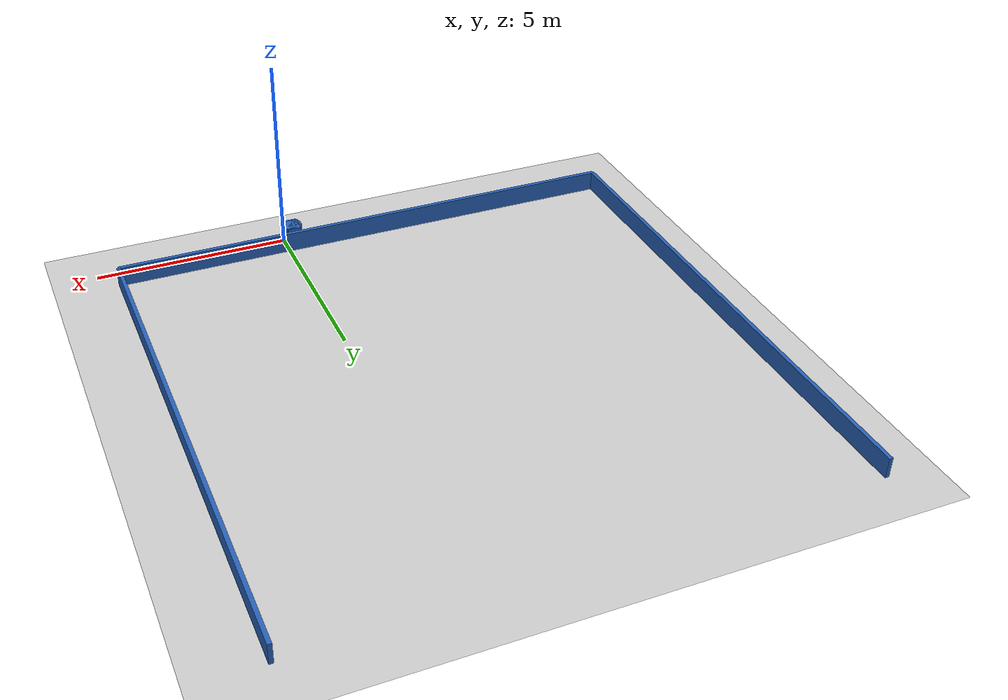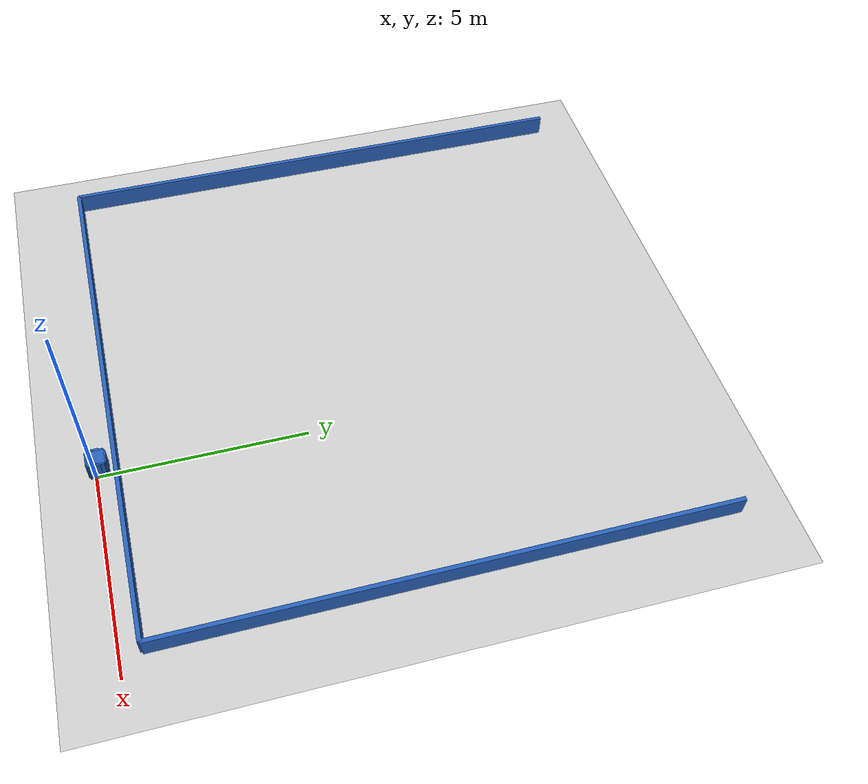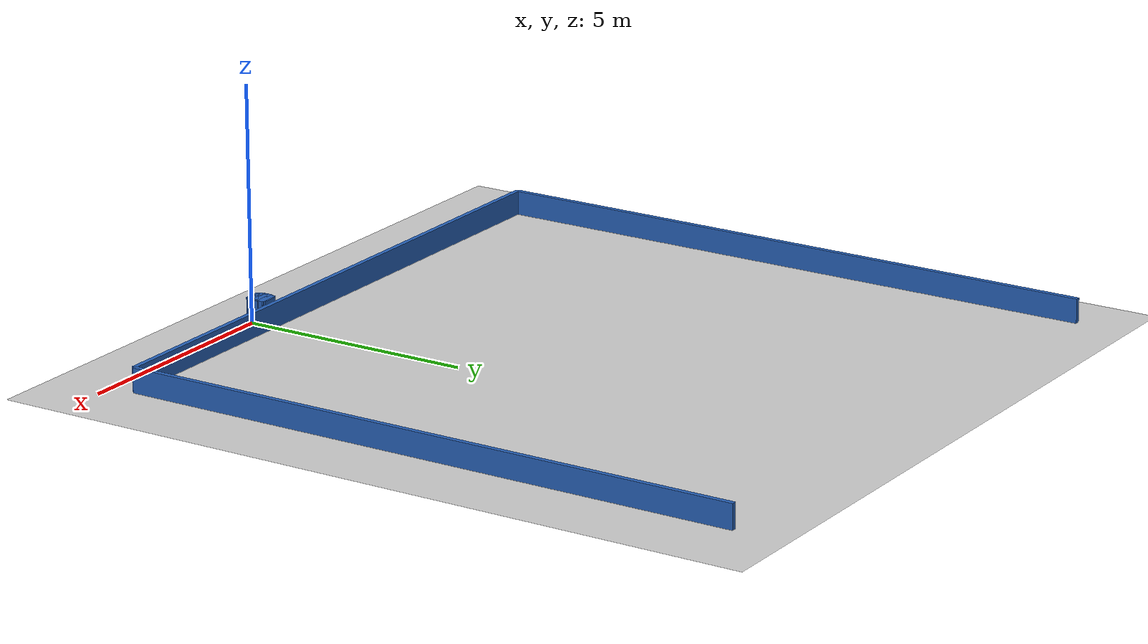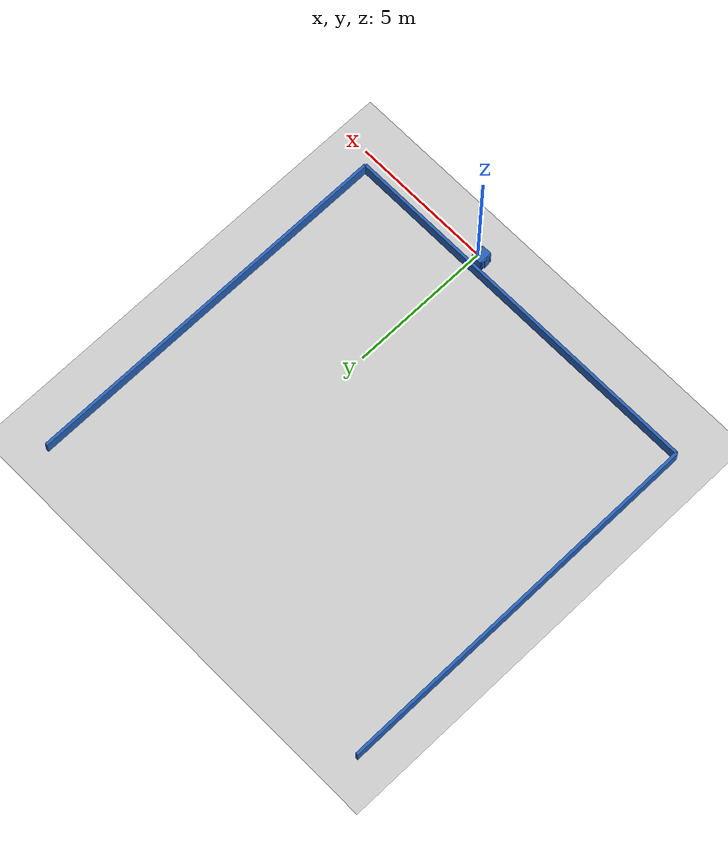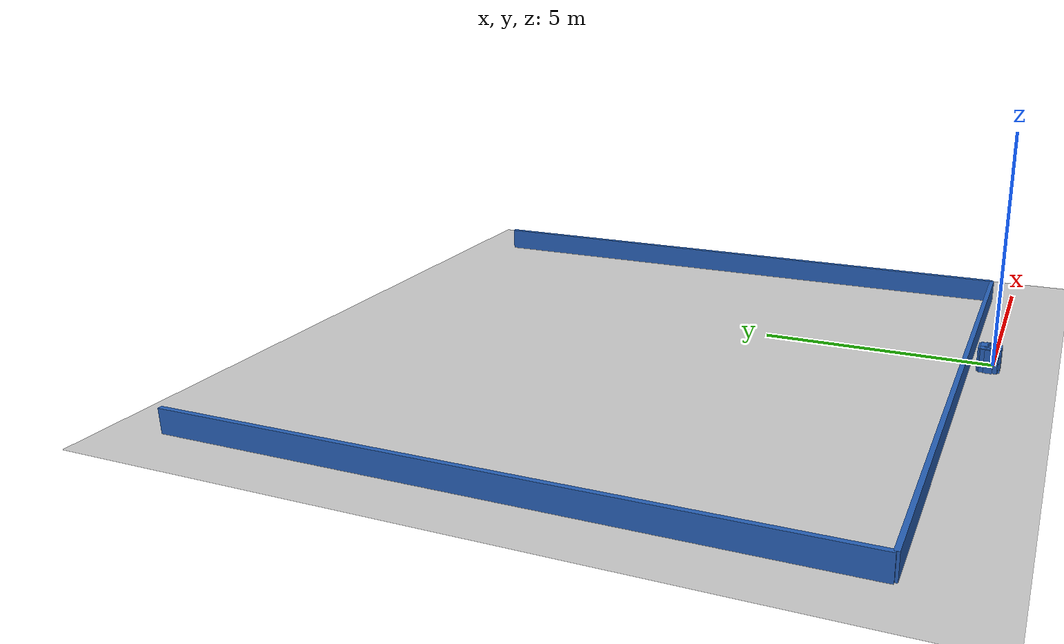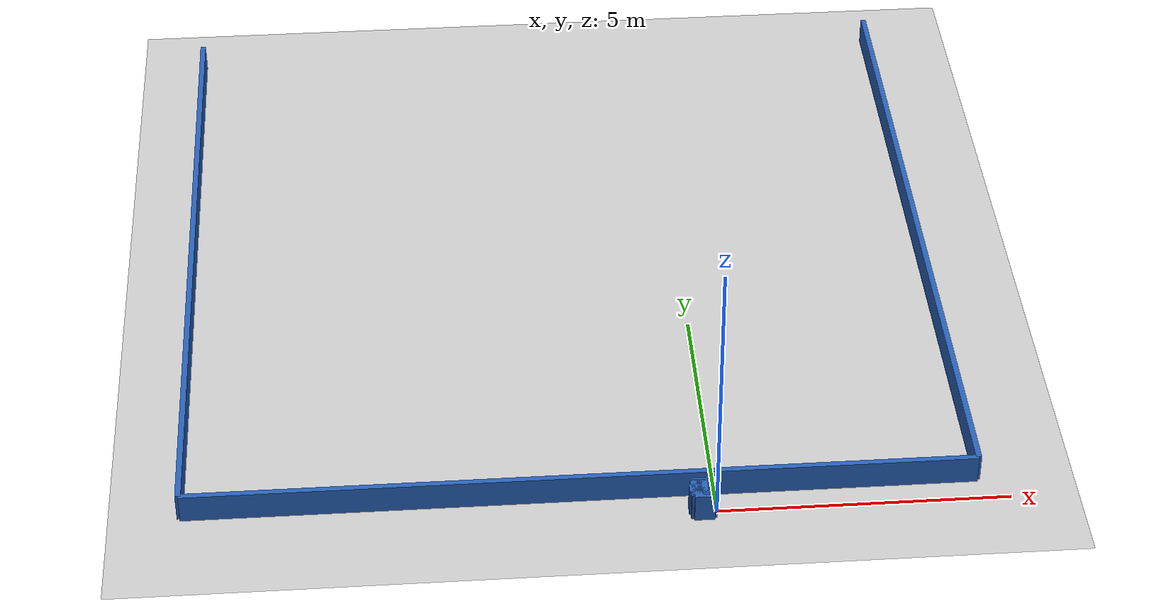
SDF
<?xml version="1.0" ?>
    <sdf version="1.5">
      <world name="default">
        <!-- A global light source -->
        <include>
          <uri>model://sun</uri>
        </include>
        <!-- A ground plane -->
        <include>
          <uri>model://ground_plane</uri>
        </include>

    <model name='libopen_space_final_T2B_96_0'>
      <static>1</static>
      <pose frame=''>-0.225000 0.075000 0.000000 0.000000 0.000000 0.000000</pose>
      <link name='link'>
        <inertial>
          <mass>1</mass>
          <inertia>
            <ixx>0.145833</ixx>
            <ixy>0</ixy>
            <ixz>0</ixz>
            <iyy>0.145833</iyy>
            <iyz>0</iyz>
            <izz>0.125</izz>
          </inertia>
        </inertial>
        <collision name='collision'>
          <geometry>
            <box>
              <size>0.13 0.26 1</size>
            </box>
          </geometry>
          <max_contacts>10</max_contacts>
          <surface>
            <contact>
              <ode/>
            </contact>
            <bounce/>
            <friction>
              <torsional>
                <ode/>
              </torsional>
              <ode/>
            </friction>
          </surface>
        </collision>
        <visual name='visual'>
          <geometry>
            <box>
              <size>0.13 0.26 1</size>
            </box>
          </geometry>
	    <material>
              <ambient>0.152000 0.379000 0.720000 1</ambient>
	      <diffuse>0.152000 0.379000 0.720000 1</diffuse>
          </material>
          <material>
            <script>
              <name>Gazebo/Grey</name>
              <uri>file://media/materials/scripts/gazebo.material</uri>
            </script>
          </material>
        </visual>
        <self_collide>0</self_collide>
        <kinematic>0</kinematic>
        <gravity>1</gravity>
      </link>
      <plugin name='libopen_space_final_T2B_96_0' filename='libopen_space_final_T2B_96_0.so'/>
    </model>

    <model name='libopen_space_final_T2B_61_96'>
      <static>1</static>
      <pose frame=''>-0.225000 0.075000 0.000000 0.000000 0.000000 0.000000</pose>
      <link name='link'>
        <inertial>
          <mass>1</mass>
          <inertia>
            <ixx>0.145833</ixx>
            <ixy>0</ixy>
            <ixz>0</ixz>
            <iyy>0.145833</iyy>
            <iyz>0</iyz>
            <izz>0.125</izz>
          </inertia>
        </inertial>
        <collision name='collision'>
          <geometry>
            <box>
              <size>0.49 0.19 1</size>
            </box>
          </geometry>
          <max_contacts>10</max_contacts>
          <surface>
            <contact>
              <ode/>
            </contact>
            <bounce/>
            <friction>
              <torsional>
                <ode/>
              </torsional>
              <ode/>
            </friction>
          </surface>
        </collision>
        <visual name='visual'>
          <geometry>
            <box>
              <size>0.49 0.19 1</size>
            </box>
          </geometry>
	    <material>
              <ambient>0.152000 0.379000 0.720000 1</ambient>
	      <diffuse>0.152000 0.379000 0.720000 1</diffuse>
          </material>
          <material>
            <script>
              <name>Gazebo/Grey</name>
              <uri>file://media/materials/scripts/gazebo.material</uri>
            </script>
          </material>
        </visual>
        <self_collide>0</self_collide>
        <kinematic>0</kinematic>
        <gravity>1</gravity>
      </link>
      <plugin name='libopen_space_final_T2B_61_96' filename='libopen_space_final_T2B_61_96.so'/>
    </model>

    <model name='libopen_space_final_T2B_126_41'>
      <static>1</static>
      <pose frame=''>-0.225000 0.075000 0.000000 0.000000 0.000000 0.000000</pose>
      <link name='link'>
        <inertial>
          <mass>1</mass>
          <inertia>
            <ixx>0.145833</ixx>
            <ixy>0</ixy>
            <ixz>0</ixz>
            <iyy>0.145833</iyy>
            <iyz>0</iyz>
            <izz>0.125</izz>
          </inertia>
        </inertial>
        <collision name='collision'>
          <geometry>
            <box>
              <size>0.36 0.41 1</size>
            </box>
          </geometry>
          <max_contacts>10</max_contacts>
          <surface>
            <contact>
              <ode/>
            </contact>
            <bounce/>
            <friction>
              <torsional>
                <ode/>
              </torsional>
              <ode/>
            </friction>
          </surface>
        </collision>
        <visual name='visual'>
          <geometry>
            <box>
              <size>0.36 0.41 1</size>
            </box>
          </geometry>
	    <material>
              <ambient>0.152000 0.379000 0.720000 1</ambient>
	      <diffuse>0.152000 0.379000 0.720000 1</diffuse>
          </material>
          <material>
            <script>
              <name>Gazebo/Grey</name>
              <uri>file://media/materials/scripts/gazebo.material</uri>
            </script>
          </material>
        </visual>
        <self_collide>0</self_collide>
        <kinematic>0</kinematic>
        <gravity>1</gravity>
      </link>
      <plugin name='libopen_space_final_T2B_126_41' filename='libopen_space_final_T2B_126_41.so'/>
    </model>

    <model name='libopen_space_final_T2B_112_98'>
      <static>1</static>
      <pose frame=''>-0.225000 0.075000 0.000000 0.000000 0.000000 0.000000</pose>
      <link name='link'>
        <inertial>
          <mass>1</mass>
          <inertia>
            <ixx>0.145833</ixx>
            <ixy>0</ixy>
            <ixz>0</ixz>
            <iyy>0.145833</iyy>
            <iyz>0</iyz>
            <izz>0.125</izz>
          </inertia>
        </inertial>
        <collision name='collision'>
          <geometry>
            <box>
              <size>0.34 0.48 1</size>
            </box>
          </geometry>
          <max_contacts>10</max_contacts>
          <surface>
            <contact>
              <ode/>
            </contact>
            <bounce/>
            <friction>
              <torsional>
                <ode/>
              </torsional>
              <ode/>
            </friction>
          </surface>
        </collision>
        <visual name='visual'>
          <geometry>
            <box>
              <size>0.34 0.48 1</size>
            </box>
          </geometry>
	    <material>
              <ambient>0.152000 0.379000 0.720000 1</ambient>
	      <diffuse>0.152000 0.379000 0.720000 1</diffuse>
          </material>
          <material>
            <script>
              <name>Gazebo/Grey</name>
              <uri>file://media/materials/scripts/gazebo.material</uri>
            </script>
          </material>
        </visual>
        <self_collide>0</self_collide>
        <kinematic>0</kinematic>
        <gravity>1</gravity>
      </link>
      <plugin name='libopen_space_final_T2B_112_98' filename='libopen_space_final_T2B_112_98.so'/>
    </model>

    <model name='libopen_space_final_T2B_77_58'>
      <static>1</static>
      <pose frame=''>-0.225000 0.075000 0.000000 0.000000 0.000000 0.000000</pose>
      <link name='link'>
        <inertial>
          <mass>1</mass>
          <inertia>
            <ixx>0.145833</ixx>
            <ixy>0</ixy>
            <ixz>0</ixz>
            <iyy>0.145833</iyy>
            <iyz>0</iyz>
            <izz>0.125</izz>
          </inertia>
        </inertial>
        <collision name='collision'>
          <geometry>
            <box>
              <size>0.43 0.41 1</size>
            </box>
          </geometry>
          <max_contacts>10</max_contacts>
          <surface>
            <contact>
              <ode/>
            </contact>
            <bounce/>
            <friction>
              <torsional>
                <ode/>
              </torsional>
              <ode/>
            </friction>
          </surface>
        </collision>
        <visual name='visual'>
          <geometry>
            <box>
              <size>0.43 0.41 1</size>
            </box>
          </geometry>
	    <material>
              <ambient>0.152000 0.379000 0.720000 1</ambient>
	      <diffuse>0.152000 0.379000 0.720000 1</diffuse>
          </material>
          <material>
            <script>
              <name>Gazebo/Grey</name>
              <uri>file://media/materials/scripts/gazebo.material</uri>
            </script>
          </material>
        </visual>
        <self_collide>0</self_collide>
        <kinematic>0</kinematic>
        <gravity>1</gravity>
      </link>
      <plugin name='libopen_space_final_T2B_77_58' filename='libopen_space_final_T2B_77_58.so'/>
    </model>

    <model name='libopen_space_final_T2B_106_71'>
      <static>1</static>
      <pose frame=''>-0.225000 0.075000 0.000000 0.000000 0.000000 0.000000</pose>
      <link name='link'>
        <inertial>
          <mass>1</mass>
          <inertia>
            <ixx>0.145833</ixx>
            <ixy>0</ixy>
            <ixz>0</ixz>
            <iyy>0.145833</iyy>
            <iyz>0</iyz>
            <izz>0.125</izz>
          </inertia>
        </inertial>
        <collision name='collision'>
          <geometry>
            <box>
              <size>0.44 0.37 1</size>
            </box>
          </geometry>
          <max_contacts>10</max_contacts>
          <surface>
            <contact>
              <ode/>
            </contact>
            <bounce/>
            <friction>
              <torsional>
                <ode/>
              </torsional>
              <ode/>
            </friction>
          </surface>
        </collision>
        <visual name='visual'>
          <geometry>
            <box>
              <size>0.44 0.37 1</size>
            </box>
          </geometry>
	    <material>
              <ambient>0.152000 0.379000 0.720000 1</ambient>
	      <diffuse>0.152000 0.379000 0.720000 1</diffuse>
          </material>
          <material>
            <script>
              <name>Gazebo/Grey</name>
              <uri>file://media/materials/scripts/gazebo.material</uri>
            </script>
          </material>
        </visual>
        <self_collide>0</self_collide>
        <kinematic>0</kinematic>
        <gravity>1</gravity>
      </link>
      <plugin name='libopen_space_final_T2B_106_71' filename='libopen_space_final_T2B_106_71.so'/>
    </model>

    <model name='libopen_space_final_T2B_115_16'>
      <static>1</static>
      <pose frame=''>-0.225000 0.075000 0.000000 0.000000 0.000000 0.000000</pose>
      <link name='link'>
        <inertial>
          <mass>1</mass>
          <inertia>
            <ixx>0.145833</ixx>
            <ixy>0</ixy>
            <ixz>0</ixz>
            <iyy>0.145833</iyy>
            <iyz>0</iyz>
            <izz>0.125</izz>
          </inertia>
        </inertial>
        <collision name='collision'>
          <geometry>
            <box>
              <size>0.29 0.12 1</size>
            </box>
          </geometry>
          <max_contacts>10</max_contacts>
          <surface>
            <contact>
              <ode/>
            </contact>
            <bounce/>
            <friction>
              <torsional>
                <ode/>
              </torsional>
              <ode/>
            </friction>
          </surface>
        </collision>
        <visual name='visual'>
          <geometry>
            <box>
              <size>0.29 0.12 1</size>
            </box>
          </geometry>
	    <material>
              <ambient>0.152000 0.379000 0.720000 1</ambient>
	      <diffuse>0.152000 0.379000 0.720000 1</diffuse>
          </material>
          <material>
            <script>
              <name>Gazebo/Grey</name>
              <uri>file://media/materials/scripts/gazebo.material</uri>
            </script>
          </material>
        </visual>
        <self_collide>0</self_collide>
        <kinematic>0</kinematic>
        <gravity>1</gravity>
      </link>
      <plugin name='libopen_space_final_T2B_115_16' filename='libopen_space_final_T2B_115_16.so'/>
    </model>

    <model name='libopen_space_final_T2B_123_20'>
      <static>1</static>
      <pose frame=''>-0.225000 0.075000 0.000000 0.000000 0.000000 0.000000</pose>
      <link name='link'>
        <inertial>
          <mass>1</mass>
          <inertia>
            <ixx>0.145833</ixx>
            <ixy>0</ixy>
            <ixz>0</ixz>
            <iyy>0.145833</iyy>
            <iyz>0</iyz>
            <izz>0.125</izz>
          </inertia>
        </inertial>
        <collision name='collision'>
          <geometry>
            <box>
              <size>0.40 0.11 1</size>
            </box>
          </geometry>
          <max_contacts>10</max_contacts>
          <surface>
            <contact>
              <ode/>
            </contact>
            <bounce/>
            <friction>
              <torsional>
                <ode/>
              </torsional>
              <ode/>
            </friction>
          </surface>
        </collision>
        <visual name='visual'>
          <geometry>
            <box>
              <size>0.40 0.11 1</size>
            </box>
          </geometry>
	    <material>
              <ambient>0.152000 0.379000 0.720000 1</ambient>
	      <diffuse>0.152000 0.379000 0.720000 1</diffuse>
          </material>
          <material>
            <script>
              <name>Gazebo/Grey</name>
              <uri>file://media/materials/scripts/gazebo.material</uri>
            </script>
          </material>
        </visual>
        <self_collide>0</self_collide>
        <kinematic>0</kinematic>
        <gravity>1</gravity>
      </link>
      <plugin name='libopen_space_final_T2B_123_20' filename='libopen_space_final_T2B_123_20.so'/>
    </model>

    <model name='libopen_space_final_T2B_94_31'>
      <static>1</static>
      <pose frame=''>-0.225000 0.075000 0.000000 0.000000 0.000000 0.000000</pose>
      <link name='link'>
        <inertial>
          <mass>1</mass>
          <inertia>
            <ixx>0.145833</ixx>
            <ixy>0</ixy>
            <ixz>0</ixz>
            <iyy>0.145833</iyy>
            <iyz>0</iyz>
            <izz>0.125</izz>
          </inertia>
        </inertial>
        <collision name='collision'>
          <geometry>
            <box>
              <size>0.14 0.35 1</size>
            </box>
          </geometry>
          <max_contacts>10</max_contacts>
          <surface>
            <contact>
              <ode/>
            </contact>
            <bounce/>
            <friction>
              <torsional>
                <ode/>
              </torsional>
              <ode/>
            </friction>
          </surface>
        </collision>
        <visual name='visual'>
          <geometry>
            <box>
              <size>0.14 0.35 1</size>
            </box>
          </geometry>
	    <material>
              <ambient>0.152000 0.379000 0.720000 1</ambient>
	      <diffuse>0.152000 0.379000 0.720000 1</diffuse>
          </material>
          <material>
            <script>
              <name>Gazebo/Grey</name>
              <uri>file://media/materials/scripts/gazebo.material</uri>
            </script>
          </material>
        </visual>
        <self_collide>0</self_collide>
        <kinematic>0</kinematic>
        <gravity>1</gravity>
      </link>
      <plugin name='libopen_space_final_T2B_94_31' filename='libopen_space_final_T2B_94_31.so'/>
    </model>

    <model name='libopen_space_final_T2B_129_21'>
      <static>1</static>
      <pose frame=''>-0.225000 0.075000 0.000000 0.000000 0.000000 0.000000</pose>
      <link name='link'>
        <inertial>
          <mass>1</mass>
          <inertia>
            <ixx>0.145833</ixx>
            <ixy>0</ixy>
            <ixz>0</ixz>
            <iyy>0.145833</iyy>
            <iyz>0</iyz>
            <izz>0.125</izz>
          </inertia>
        </inertial>
        <collision name='collision'>
          <geometry>
            <box>
              <size>0.32 0.16 1</size>
            </box>
          </geometry>
          <max_contacts>10</max_contacts>
          <surface>
            <contact>
              <ode/>
            </contact>
            <bounce/>
            <friction>
              <torsional>
                <ode/>
              </torsional>
              <ode/>
            </friction>
          </surface>
        </collision>
        <visual name='visual'>
          <geometry>
            <box>
              <size>0.32 0.16 1</size>
            </box>
          </geometry>
	    <material>
              <ambient>0.152000 0.379000 0.720000 1</ambient>
	      <diffuse>0.152000 0.379000 0.720000 1</diffuse>
          </material>
          <material>
            <script>
              <name>Gazebo/Grey</name>
              <uri>file://media/materials/scripts/gazebo.material</uri>
            </script>
          </material>
        </visual>
        <self_collide>0</self_collide>
        <kinematic>0</kinematic>
        <gravity>1</gravity>
      </link>
      <plugin name='libopen_space_final_T2B_129_21' filename='libopen_space_final_T2B_129_21.so'/>
    </model>

        <model name='bottom_wall'>
          <static>1</static>
          <pose frame=''>-2.25 0.5 0.000000 0.000000 0.000000 1.57079632</pose>
          <link name='link'>
            <inertial>
            <mass>1</mass>
            <inertia>
              <ixx>0.145833</ixx>
              <ixy>0</ixy>
              <ixz>0</ixz>
              <iyy>0.145833</iyy>
              <iyz>0</iyz>
              <izz>0.125</izz>
            </inertia>
            </inertial>
            <collision name='collision'>
            <geometry>
              <box>
              <size>0.1 13.5 1</size>
              </box>
            </geometry>
            <max_contacts>10</max_contacts>
            <surface>
              <contact>
              <ode/>
              </contact>
              <bounce/>
              <friction>
              <torsional>
                <ode/>
              </torsional>
              <ode/>
              </friction>
            </surface>
            </collision>
            <visual name='visual'>
            <geometry>
              <box>
              <size>0.1 13.5 1</size>
              </box>
            </geometry>
            <material>
              <ambient>0.152000 0.379000 0.720000 1</ambient>
            <diffuse>0.152000 0.379000 0.720000 1</diffuse>
            </material>
            <material>
              <script>
              <name>Gazebo/Grey</name>
              <uri>file://media/materials/scripts/gazebo.material</uri>
              </script>
            </material>
            </visual>
            <self_collide>0</self_collide>
            <kinematic>0</kinematic>
            <gravity>1</gravity>
          </link>
        </model>

        <model name='left_wall'>
          <static>1</static>
          <pose frame=''>-9 7.25 0.000000 0.000000 0.000000 0.000000</pose>
          <link name='link'>
            <inertial>
            <mass>1</mass>
            <inertia>
              <ixx>0.145833</ixx>
              <ixy>0</ixy>
              <ixz>0</ixz>
              <iyy>0.145833</iyy>
              <iyz>0</iyz>
              <izz>0.125</izz>
            </inertia>
            </inertial>
            <collision name='collision'>
            <geometry>
              <box>
              <size>0.1 13.5 1</size>
              </box>
            </geometry>
            <max_contacts>10</max_contacts>
            <surface>
              <contact>
              <ode/>
              </contact>
              <bounce/>
              <friction>
              <torsional>
                <ode/>
              </torsional>
              <ode/>
              </friction>
            </surface>
            </collision>
            <visual name='visual'>
            <geometry>
              <box>
              <size>0.1 13.5 1</size>
              </box>
            </geometry>
            <material>
              <ambient>0.152000 0.379000 0.720000 1</ambient>
            <diffuse>0.152000 0.379000 0.720000 1</diffuse>
            </material>
            <material>
              <script>
              <name>Gazebo/Grey</name>
              <uri>file://media/materials/scripts/gazebo.material</uri>
              </script>
            </material>
            </visual>
            <self_collide>0</self_collide>
            <kinematic>0</kinematic>
            <gravity>1</gravity>
          </link>
        </model>

        <model name='right_wall'>
          <static>1</static>
          <pose frame=''>4.5 7.25 0.000000 0.000000 0.000000 0.000000</pose>
          <link name='link'>
            <inertial>
            <mass>1</mass>
            <inertia>
              <ixx>0.145833</ixx>
              <ixy>0</ixy>
              <ixz>0</ixz>
              <iyy>0.145833</iyy>
              <iyz>0</iyz>
              <izz>0.125</izz>
            </inertia>
            </inertial>
            <collision name='collision'>
            <geometry>
              <box>
              <size>0.1 13.5 1</size>
              </box>
            </geometry>
            <max_contacts>10</max_contacts>
            <surface>
              <contact>
              <ode/>
              </contact>
              <bounce/>
              <friction>
              <torsional>
                <ode/>
              </torsional>
              <ode/>
              </friction>
            </surface>
            </collision>
            <visual name='visual'>
            <geometry>
              <box>
              <size>0.1 13.5 1</size>
              </box>
            </geometry>
            <material>
              <ambient>0.152000 0.379000 0.720000 1</ambient>
            <diffuse>0.152000 0.379000 0.720000 1</diffuse>
            </material>
            <material>
              <script>
              <name>Gazebo/Grey</name>
              <uri>file://media/materials/scripts/gazebo.material</uri>
              </script>
            </material>
            </visual>
            <self_collide>0</self_collide>
            <kinematic>0</kinematic>
            <gravity>1</gravity>
          </link>
        </model>

      </world>
    </sdf>"
